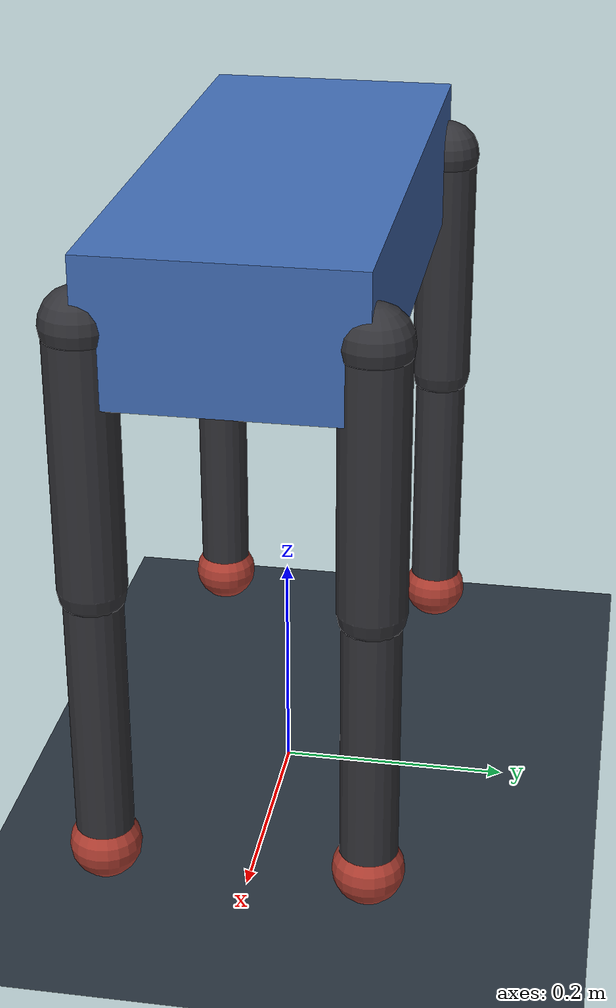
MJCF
<mujoco model="starter_quadruped">
  <compiler angle="radian" autolimits="true"/>
  <option timestep="0.002" gravity="0 0 -9.81" integrator="RK4"/>

  <visual>
    <headlight diffuse="0.6 0.6 0.6" ambient="0.25 0.25 0.25" specular="0.1 0.1 0.1"/>
    <rgba haze="0.15 0.25 0.35 1"/>
  </visual>

  <asset>
    <texture type="skybox" builtin="gradient" rgb1="0.85 0.92 1.0" rgb2="0.15 0.25 0.35" width="512" height="3072"/>
    <texture name="ground_tex" type="2d" builtin="checker" rgb1="0.2 0.25 0.3" rgb2="0.12 0.16 0.2" width="512" height="512"/>
    <material name="ground_mat" texture="ground_tex" texrepeat="6 6" reflectance="0.1"/>
    <material name="body_mat" rgba="0.26 0.43 0.72 1"/>
    <material name="leg_mat" rgba="0.2 0.2 0.22 1"/>
    <material name="foot_mat" rgba="0.7 0.25 0.2 1"/>
  </asset>

  <default>
    <geom condim="3" friction="0.9 0.05 0.02" solref="0.008 1" solimp="0.95 0.99 0.001"/>
    <joint damping="2.0" armature="0.02"/>
    <position kp="250"/>
    <default class="abd">
      <joint axis="1 0 0" range="-0.6 0.6"/>
    </default>
    <default class="pitch">
      <joint axis="0 1 0" range="-1.5 1.0"/>
    </default>
    <default class="knee">
      <joint axis="0 1 0" range="-2.2 -0.1"/>
    </default>
  </default>

  <worldbody>
    <light pos="0 0 2.5" dir="0 0 -1"/>
    <geom name="ground" type="plane" pos="0 0 0" size="0 0 1" material="ground_mat"/>

    <body name="base" pos="0 0 0.52">
      <freejoint/>
      <inertial pos="0 0 0" mass="8.5" diaginertia="0.12 0.32 0.35"/>
      <geom name="torso" type="box" size="0.26 0.11 0.06" material="body_mat"/>

      <body name="fl_hip" pos="0.24 0.11 0">
        <joint name="fl_hip_abd" class="abd"/>
        <geom type="sphere" size="0.03" material="leg_mat"/>
        <body name="fl_upper" pos="0 0 0">
          <joint name="fl_hip_pitch" class="pitch"/>
          <geom type="capsule" fromto="0 0 0 0 0 -0.22" size="0.028" material="leg_mat"/>
          <body name="fl_lower" pos="0 0 -0.22">
            <joint name="fl_knee" class="knee"/>
            <geom type="capsule" fromto="0 0 0 0 0 -0.24" size="0.024" material="leg_mat"/>
            <body name="fl_foot" pos="0 0 -0.24">
              <geom type="sphere" size="0.03" material="foot_mat"/>
            </body>
          </body>
        </body>
      </body>

      <body name="fr_hip" pos="0.24 -0.11 0">
        <joint name="fr_hip_abd" class="abd"/>
        <geom type="sphere" size="0.03" material="leg_mat"/>
        <body name="fr_upper" pos="0 0 0">
          <joint name="fr_hip_pitch" class="pitch"/>
          <geom type="capsule" fromto="0 0 0 0 0 -0.22" size="0.028" material="leg_mat"/>
          <body name="fr_lower" pos="0 0 -0.22">
            <joint name="fr_knee" class="knee"/>
            <geom type="capsule" fromto="0 0 0 0 0 -0.24" size="0.024" material="leg_mat"/>
            <body name="fr_foot" pos="0 0 -0.24">
              <geom type="sphere" size="0.03" material="foot_mat"/>
            </body>
          </body>
        </body>
      </body>

      <body name="rl_hip" pos="-0.24 0.11 0">
        <joint name="rl_hip_abd" class="abd"/>
        <geom type="sphere" size="0.03" material="leg_mat"/>
        <body name="rl_upper" pos="0 0 0">
          <joint name="rl_hip_pitch" class="pitch"/>
          <geom type="capsule" fromto="0 0 0 0 0 -0.22" size="0.028" material="leg_mat"/>
          <body name="rl_lower" pos="0 0 -0.22">
            <joint name="rl_knee" class="knee"/>
            <geom type="capsule" fromto="0 0 0 0 0 -0.24" size="0.024" material="leg_mat"/>
            <body name="rl_foot" pos="0 0 -0.24">
              <geom type="sphere" size="0.03" material="foot_mat"/>
            </body>
          </body>
        </body>
      </body>

      <body name="rr_hip" pos="-0.24 -0.11 0">
        <joint name="rr_hip_abd" class="abd"/>
        <geom type="sphere" size="0.03" material="leg_mat"/>
        <body name="rr_upper" pos="0 0 0">
          <joint name="rr_hip_pitch" class="pitch"/>
          <geom type="capsule" fromto="0 0 0 0 0 -0.22" size="0.028" material="leg_mat"/>
          <body name="rr_lower" pos="0 0 -0.22">
            <joint name="rr_knee" class="knee"/>
            <geom type="capsule" fromto="0 0 0 0 0 -0.24" size="0.024" material="leg_mat"/>
            <body name="rr_foot" pos="0 0 -0.24">
              <geom type="sphere" size="0.03" material="foot_mat"/>
            </body>
          </body>
        </body>
      </body>
    </body>
  </worldbody>

  <actuator>
    <position name="fl_hip_abd_pos" joint="fl_hip_abd" ctrlrange="-0.6 0.6"/>
    <position name="fl_hip_pitch_pos" joint="fl_hip_pitch" ctrlrange="-1.5 1.0"/>
    <position name="fl_knee_pos" joint="fl_knee" ctrlrange="-2.2 -0.1"/>

    <position name="fr_hip_abd_pos" joint="fr_hip_abd" ctrlrange="-0.6 0.6"/>
    <position name="fr_hip_pitch_pos" joint="fr_hip_pitch" ctrlrange="-1.5 1.0"/>
    <position name="fr_knee_pos" joint="fr_knee" ctrlrange="-2.2 -0.1"/>

    <position name="rl_hip_abd_pos" joint="rl_hip_abd" ctrlrange="-0.6 0.6"/>
    <position name="rl_hip_pitch_pos" joint="rl_hip_pitch" ctrlrange="-1.5 1.0"/>
    <position name="rl_knee_pos" joint="rl_knee" ctrlrange="-2.2 -0.1"/>

    <position name="rr_hip_abd_pos" joint="rr_hip_abd" ctrlrange="-0.6 0.6"/>
    <position name="rr_hip_pitch_pos" joint="rr_hip_pitch" ctrlrange="-1.5 1.0"/>
    <position name="rr_knee_pos" joint="rr_knee" ctrlrange="-2.2 -0.1"/>
  </actuator>
</mujoco>
